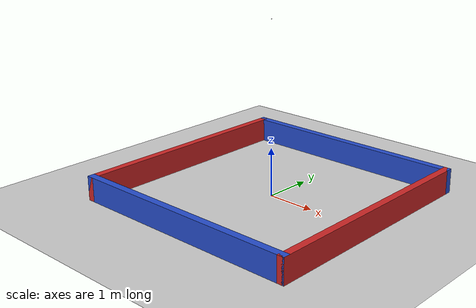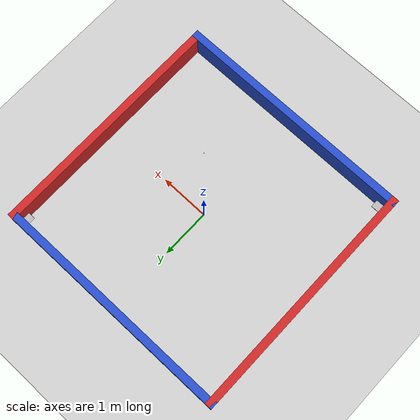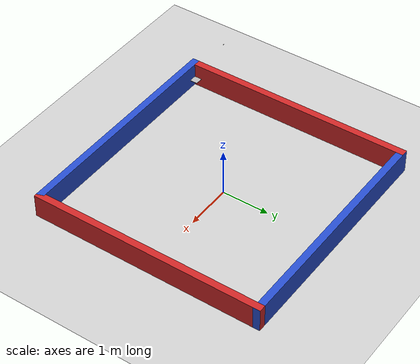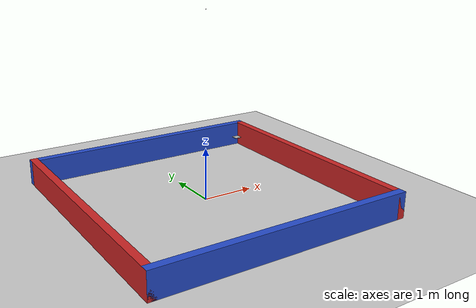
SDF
<sdf version="1.7">
 <world name="default">
  <light name="sun" type="directional">
   <cast_shadows>0</cast_shadows>
   <pose>0 0 0.5 0 -0 0</pose>
   <diffuse>0.8 0.8 0.8 1</diffuse>
   <specular>0.2 0.2 0.2 1</specular>
   <attenuation>
    <range>1000</range>
    <constant>0.9</constant>
    <linear>0.01</linear>
    <quadratic>0.001</quadratic>
   </attenuation>
   <direction>-0.5 0.1 -0.9</direction>
   <spot><inner_angle>0</inner_angle><outer_angle>0</outer_angle><falloff>0</falloff></spot>
  </light>
  <model name="ground_plane">
   <static>1</static>
   <link name="link">
    <collision name="collision">
     <geometry><plane><normal>0 0 1</normal><size>100 100</size></plane></geometry>
     <surface><friction><ode><mu>100</mu><mu2>50</mu2></ode></friction></surface>
    </collision>
    <visual name="visual">
     <cast_shadows>0</cast_shadows>
     <geometry><plane><normal>0 0 1</normal><size>100 100</size></plane></geometry>
     <material>
      <script><uri>file://media/materials/scripts/gazebo.material</uri><name>Gazebo/Grey</name></script>
     </material>
    </visual>
   </link>
  </model>
  <gravity>0 0 -9.8</gravity>
  <magnetic_field>6e-06 2.3e-05 -4.2e-05</magnetic_field>
  <atmosphere type="adiabatic"/>
  <physics type="ode">
   <max_step_size>0.001</max_step_size>
   <real_time_factor>1</real_time_factor>
   <real_time_update_rate>1000</real_time_update_rate>
  </physics>
  <scene><ambient>0.4 0.4 0.4 1</ambient><background>0.7 0.7 0.7 1</background><shadows>1</shadows></scene>
  <spherical_coordinates>
   <surface_model>EARTH_WGS84</surface_model>
   <latitude_deg>0</latitude_deg>
   <longitude_deg>0</longitude_deg>
   <elevation>0</elevation>
   <heading_deg>0</heading_deg>
  </spherical_coordinates>
  <model name="swarm_cage">
   <link name="Wall_1">
    <pose>0 -2.425 0 0 -0 0</pose>
    <inertial>
     <mass>1</mass>
     <inertia><ixx>1</ixx><ixy>0</ixy><ixz>0</ixz><iyy>1</iyy><iyz>0</iyz><izz>1</izz></inertia>
    </inertial>
    <visual name="Wall_1_Visual">
     <pose>0 0 0.25 0 -0 0</pose>
     <geometry><box><size>5 0.15 0.5</size></box></geometry>
     <material>
      <script><uri>file://media/materials/scripts/gazebo.material</uri><name>Gazebo/Blue</name></script>
      <ambient>1 1 1 1</ambient>
      <shader type="pixel"><normal_map>__default__</normal_map></shader>
      <diffuse>0 0 1 1</diffuse>
      <specular>0.1 0.1 0.1 1</specular>
      <emissive>0 0 0 1</emissive>
     </material>
     <meta><layer>0</layer></meta>
    </visual>
    <collision name="Wall_1_Collision">
     <pose>0 0 0.25 0 -0 0</pose>
     <geometry><box><size>5 0.15 0.5</size></box></geometry>
     <surface>
      <friction>
       <ode><mu>1</mu><mu2>1</mu2><fdir1>0 0 0</fdir1><slip1>0</slip1><slip2>0</slip2></ode>
       <torsional>
        <coefficient>1</coefficient>
        <patch_radius>0</patch_radius>
        <surface_radius>0</surface_radius>
        <use_patch_radius>1</use_patch_radius>
        <ode><slip>0</slip></ode>
       </torsional>
      </friction>
      <bounce><restitution_coefficient>0</restitution_coefficient><threshold>1e+06</threshold></bounce>
      <contact>
       <collide_without_contact>0</collide_without_contact>
       <collide_without_contact_bitmask>1</collide_without_contact_bitmask>
       <collide_bitmask>1</collide_bitmask>
       <ode>
        <soft_cfm>0</soft_cfm>
        <soft_erp>0.2</soft_erp>
        <kp>1e+13</kp>
        <kd>1</kd>
        <max_vel>0.01</max_vel>
        <min_depth>0</min_depth>
       </ode>
       <bullet>
        <split_impulse>1</split_impulse>
        <split_impulse_penetration_threshold>-0.01</split_impulse_penetration_threshold>
        <soft_cfm>0</soft_cfm>
        <soft_erp>0.2</soft_erp>
        <kp>1e+13</kp>
        <kd>1</kd>
       </bullet>
      </contact>
     </surface>
    </collision>
   </link>
   <link name="Wall_2">
    <pose>2.425 0 0 0 -0 1.5708</pose>
    <inertial>
     <mass>1</mass>
     <inertia><ixx>1</ixx><ixy>0</ixy><ixz>0</ixz><iyy>1</iyy><iyz>0</iyz><izz>1</izz></inertia>
    </inertial>
    <visual name="Wall_2_Visual">
     <pose>0 0 0.25 0 -0 0</pose>
     <geometry><box><size>5 0.15 0.5</size></box></geometry>
     <material>
      <script><uri>file://media/materials/scripts/gazebo.material</uri><name>Gazebo/Red</name></script>
      <ambient>1 1 1 1</ambient>
      <shader type="pixel"><normal_map>__default__</normal_map></shader>
      <diffuse>1 0 0 1</diffuse>
      <specular>0.1 0.1 0.1 1</specular>
      <emissive>0 0 0 1</emissive>
     </material>
     <meta><layer>0</layer></meta>
    </visual>
    <collision name="Wall_2_Collision">
     <pose>0 0 0.25 0 -0 0</pose>
     <geometry><box><size>5 0.15 0.5</size></box></geometry>
     <surface>
      <friction>
       <ode><mu>1</mu><mu2>1</mu2><fdir1>0 0 0</fdir1><slip1>0</slip1><slip2>0</slip2></ode>
       <torsional>
        <coefficient>1</coefficient>
        <patch_radius>0</patch_radius>
        <surface_radius>0</surface_radius>
        <use_patch_radius>1</use_patch_radius>
        <ode><slip>0</slip></ode>
       </torsional>
      </friction>
      <bounce><restitution_coefficient>0</restitution_coefficient><threshold>1e+06</threshold></bounce>
      <contact>
       <collide_without_contact>0</collide_without_contact>
       <collide_without_contact_bitmask>1</collide_without_contact_bitmask>
       <collide_bitmask>1</collide_bitmask>
       <ode>
        <soft_cfm>0</soft_cfm>
        <soft_erp>0.2</soft_erp>
        <kp>1e+13</kp>
        <kd>1</kd>
        <max_vel>0.01</max_vel>
        <min_depth>0</min_depth>
       </ode>
       <bullet>
        <split_impulse>1</split_impulse>
        <split_impulse_penetration_threshold>-0.01</split_impulse_penetration_threshold>
        <soft_cfm>0</soft_cfm>
        <soft_erp>0.2</soft_erp>
        <kp>1e+13</kp>
        <kd>1</kd>
       </bullet>
      </contact>
     </surface>
    </collision>
   </link>
   <link name="Wall_3">
    <pose>0 2.425 0 0 -0 3.14159</pose>
    <inertial>
     <mass>1</mass>
     <inertia><ixx>1</ixx><ixy>0</ixy><ixz>0</ixz><iyy>1</iyy><iyz>0</iyz><izz>1</izz></inertia>
    </inertial>
    <visual name="Wall_3_Visual">
     <pose>0 0 0.25 0 -0 0</pose>
     <geometry><box><size>5 0.15 0.5</size></box></geometry>
     <material>
      <script><uri>file://media/materials/scripts/gazebo.material</uri><name>Gazebo/Blue</name></script>
      <ambient>1 1 1 1</ambient>
      <shader type="pixel"><normal_map>__default__</normal_map></shader>
      <diffuse>0 0 1 1</diffuse>
      <specular>0.1 0.1 0.1 1</specular>
      <emissive>0 0 0 1</emissive>
     </material>
     <meta><layer>0</layer></meta>
    </visual>
    <collision name="Wall_3_Collision">
     <pose>0 0 0.25 0 -0 0</pose>
     <geometry><box><size>5 0.15 0.5</size></box></geometry>
     <surface>
      <friction>
       <ode><mu>1</mu><mu2>1</mu2><fdir1>0 0 0</fdir1><slip1>0</slip1><slip2>0</slip2></ode>
       <torsional>
        <coefficient>1</coefficient>
        <patch_radius>0</patch_radius>
        <surface_radius>0</surface_radius>
        <use_patch_radius>1</use_patch_radius>
        <ode><slip>0</slip></ode>
       </torsional>
      </friction>
      <bounce><restitution_coefficient>0</restitution_coefficient><threshold>1e+06</threshold></bounce>
      <contact>
       <collide_without_contact>0</collide_without_contact>
       <collide_without_contact_bitmask>1</collide_without_contact_bitmask>
       <collide_bitmask>1</collide_bitmask>
       <ode>
        <soft_cfm>0</soft_cfm>
        <soft_erp>0.2</soft_erp>
        <kp>1e+13</kp>
        <kd>1</kd>
        <max_vel>0.01</max_vel>
        <min_depth>0</min_depth>
       </ode>
       <bullet>
        <split_impulse>1</split_impulse>
        <split_impulse_penetration_threshold>-0.01</split_impulse_penetration_threshold>
        <soft_cfm>0</soft_cfm>
        <soft_erp>0.2</soft_erp>
        <kp>1e+13</kp>
        <kd>1</kd>
       </bullet>
      </contact>
     </surface>
    </collision>
   </link>
   <link name="Wall_4">
    <pose>-2.425 0 0 0 0 -1.5708</pose>
    <inertial>
     <mass>1</mass>
     <inertia><ixx>1</ixx><ixy>0</ixy><ixz>0</ixz><iyy>1</iyy><iyz>0</iyz><izz>1</izz></inertia>
    </inertial>
    <visual name="Wall_4_Visual">
     <pose>0 0 0.25 0 -0 0</pose>
     <geometry><box><size>5 0.15 0.5</size></box></geometry>
     <material>
      <script><uri>file://media/materials/scripts/gazebo.material</uri><name>Gazebo/Red</name></script>
      <ambient>1 1 1 1</ambient>
      <shader type="pixel"><normal_map>__default__</normal_map></shader>
      <diffuse>1 0 0 1</diffuse>
      <specular>0.1 0.1 0.1 1</specular>
      <emissive>0 0 0 1</emissive>
     </material>
     <meta><layer>0</layer></meta>
    </visual>
    <collision name="Wall_4_Collision">
     <pose>0 0 0.25 0 -0 0</pose>
     <geometry><box><size>5 0.15 0.5</size></box></geometry>
     <surface>
      <friction>
       <ode><mu>1</mu><mu2>1</mu2><fdir1>0 0 0</fdir1><slip1>0</slip1><slip2>0</slip2></ode>
       <torsional>
        <coefficient>1</coefficient>
        <patch_radius>0</patch_radius>
        <surface_radius>0</surface_radius>
        <use_patch_radius>1</use_patch_radius>
        <ode><slip>0</slip></ode>
       </torsional>
      </friction>
      <bounce><restitution_coefficient>0</restitution_coefficient><threshold>1e+06</threshold></bounce>
      <contact>
       <collide_without_contact>0</collide_without_contact>
       <collide_without_contact_bitmask>1</collide_without_contact_bitmask>
       <collide_bitmask>1</collide_bitmask>
       <ode>
        <soft_cfm>0</soft_cfm>
        <soft_erp>0.2</soft_erp>
        <kp>1e+13</kp>
        <kd>1</kd>
        <max_vel>0.01</max_vel>
        <min_depth>0</min_depth>
       </ode>
       <bullet>
        <split_impulse>1</split_impulse>
        <split_impulse_penetration_threshold>-0.01</split_impulse_penetration_threshold>
        <soft_cfm>0</soft_cfm>
        <soft_erp>0.2</soft_erp>
        <kp>1e+13</kp>
        <kd>1</kd>
       </bullet>
      </contact>
     </surface>
    </collision>
   </link>
   <static>1</static>
  </model>
  <model name="Apriltag36_11_00015">
   <link name="main">
    <visual name="main_Visual">
     <geometry><box><size>0.155159 0.155561 0.01</size></box></geometry>
     <material>
      <script>
       <uri>model://Apriltag36_11_00015/materials/scripts</uri>
       <uri>model://Apriltag36_11_00015/materials/textures</uri>
       <name>Apriltag36_11_00015</name>
      </script>
     </material>
    </visual>
   </link>
   <static>1</static>
   <pose>2.27617 2.28363 0.184445 0 -0 0</pose>
  </model>
  <model name="Apriltag36_11_00014">
   <link name="main">
    <visual name="main_Visual">
     <geometry><box><size>0.172087 0.168835 0.01</size></box></geometry>
     <material>
      <script>
       <uri>model://Apriltag36_11_00014/materials/scripts</uri>
       <uri>model://Apriltag36_11_00014/materials/textures</uri>
       <name>Apriltag36_11_00014</name>
      </script>
     </material>
    </visual>
   </link>
   <static>1</static>
   <pose>-2.27461 -2.27355 0.193686 0 -0 0</pose>
  </model>
  <model name="camera">
   <pose>0 0 3.5 0 1.57075 0</pose>
   <link name="link">
    <visual name="visual"><geometry><box><size>0.01 0.01 0.01</size></box></geometry></visual>
    <sensor name="camera" type="camera">
     <camera name="__default__">
      <horizontal_fov>1.78</horizontal_fov>
      <image><width>1920</width><height>1280</height></image>
      <clip><near>0.1</near><far>100</far></clip>
     </camera>
     <always_on>1</always_on>
     <update_rate>30</update_rate>
     <visualize>0</visualize>
     <plugin name="camera_plugin" filename="libgazebo_ros_camera.so">
      <alwaysOn>true</alwaysOn>
      <imageTopicName>image_raw</imageTopicName>
      <cameraInfoTopicName>camera_info</cameraInfoTopicName>
      <updateRate>30.0</updateRate>
      <cameraName>rgb</cameraName>
      <frameName>/robot_camera_link</frameName>
      <CxPrime>320.5</CxPrime>
      <Cx>320.5</Cx>
      <Cy>240.5</Cy>
      <hackBaseline>0</hackBaseline>
      <focalLength>777.580124</focalLength>
      <distortionK1>0.0</distortionK1>
      <distortionK2>0.0</distortionK2>
      <distortionK3>0.0</distortionK3>
      <distortionT1>0.0</distortionT1>
      <distortionT2>0.0</distortionT2>
     </plugin>
    </sensor>
   </link>
   <static>1</static>
  </model>
 </world>
</sdf>
